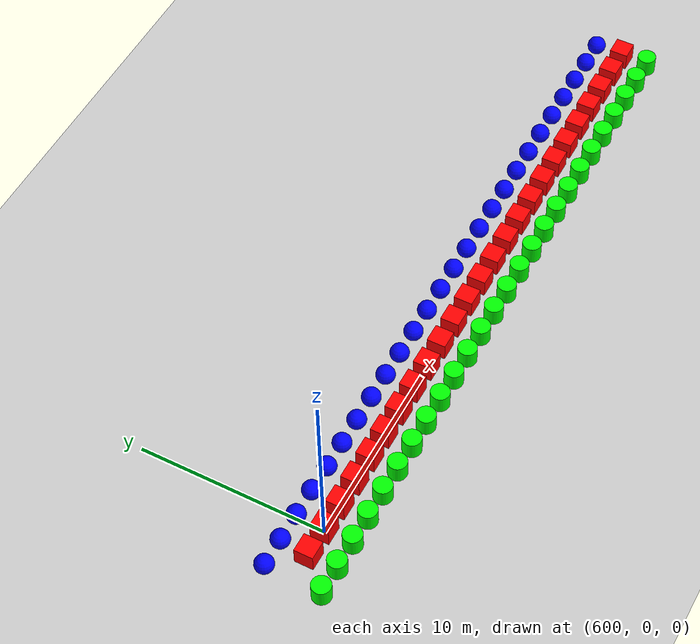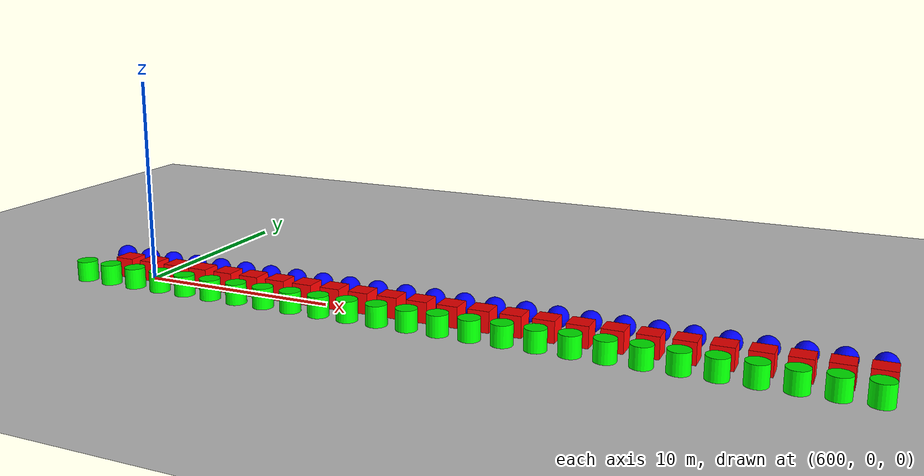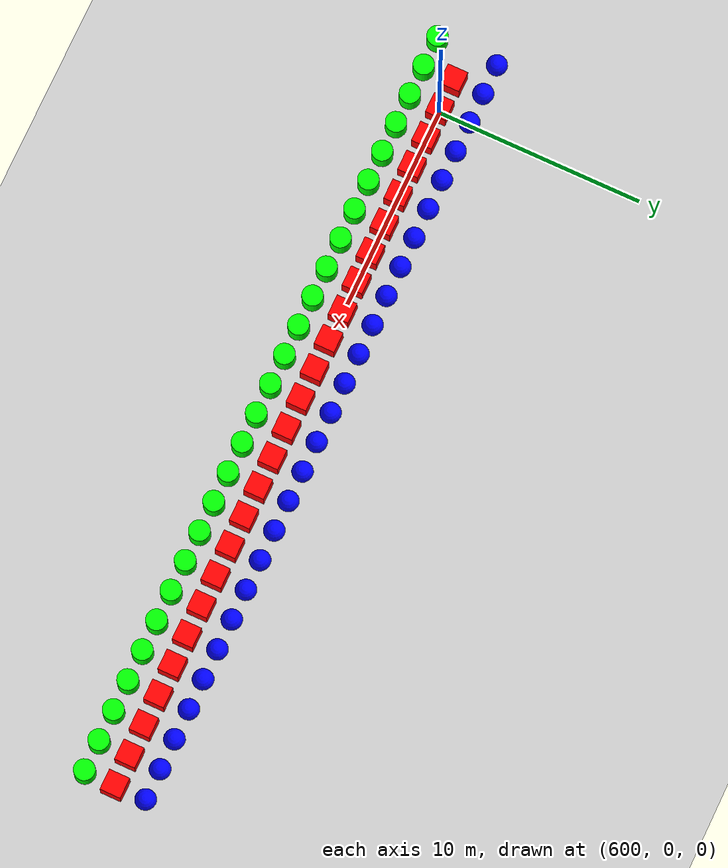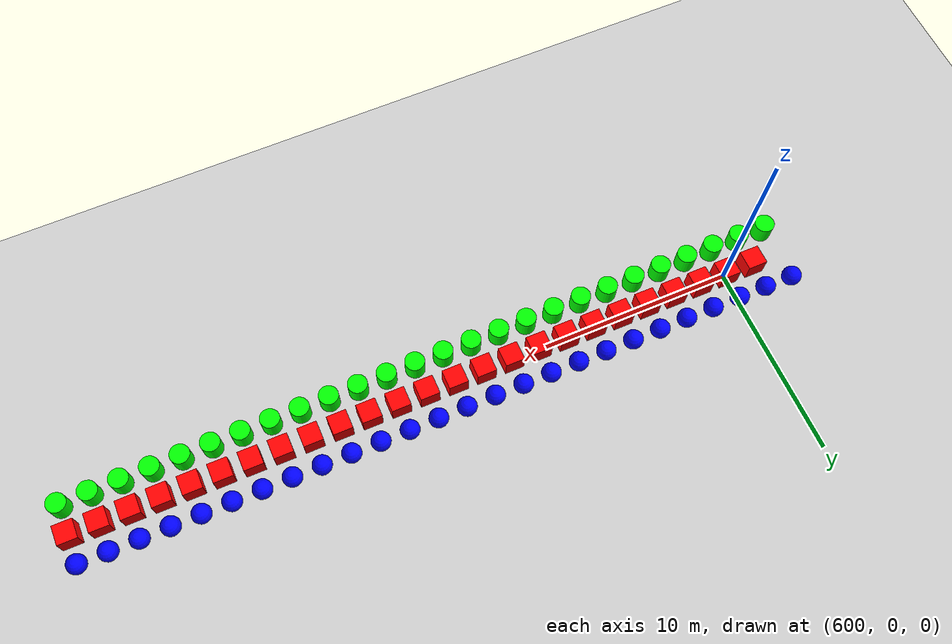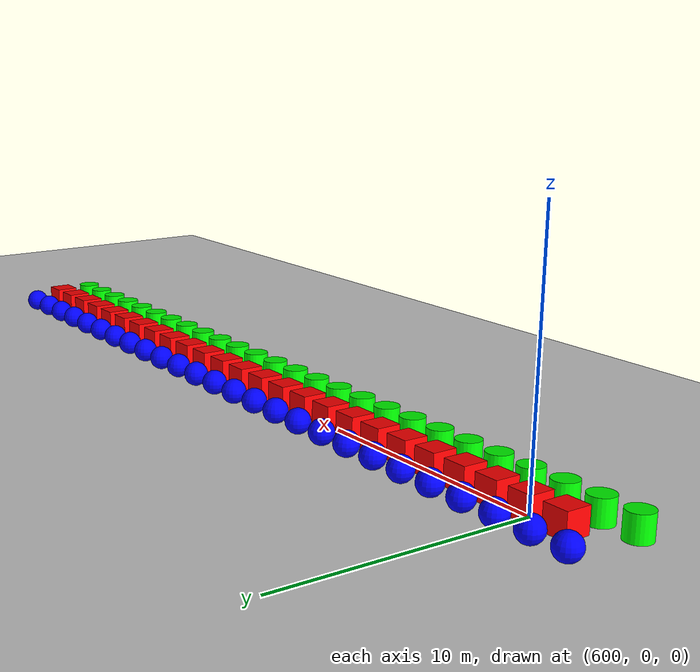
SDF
<sdf version="1.6">
 <world name="shapes">
  <model name="ground_plane">
   <static>true</static>
   <link name="link">
    <collision name="collision">
     <geometry><plane><normal>0 0 1</normal><size>100 100</size></plane></geometry>
    </collision>
    <visual name="visual">
     <geometry><plane><normal>0 0 1</normal><size>100 100</size></plane></geometry>
     <material>
      <ambient>0.8 0.8 0.8 1</ambient>
      <diffuse>0.8 0.8 0.8 1</diffuse>
      <specular>0.8 0.8 0.8 1</specular>
     </material>
    </visual>
   </link>
  </model>
  <model name="cylinder_898">
   <static>false</static>
   <pose>597.0 -1.5 0.5 0 0 0</pose>
   <link name="cylinder_link">
    <inertial>
     <inertia><ixx>2</ixx><ixy>0</ixy><ixz>0</ixz><iyy>2</iyy><iyz>0</iyz><izz>2</izz></inertia>
     <mass>2.0</mass>
    </inertial>
    <collision name="cylinder_collision">
     <geometry><cylinder><radius>0.5</radius><length>1.0</length></cylinder></geometry>
    </collision>
    <visual name="cylinder_visual">
     <geometry><cylinder><radius>0.5</radius><length>1.0</length></cylinder></geometry>
     <material><ambient>0 1 0 1</ambient><diffuse>0 1 0 1</diffuse><specular>0 1 0 1</specular></material>
    </visual>
   </link>
  </model>
  <model name="sphere_898">
   <static>false</static>
   <pose>597.0 1.5 0.5 0 0 0</pose>
   <link name="sphere_link">
    <inertial>
     <inertia><ixx>3</ixx><ixy>0</ixy><ixz>0</ixz><iyy>3</iyy><iyz>0</iyz><izz>3</izz></inertia>
     <mass>3.0</mass>
    </inertial>
    <collision name="sphere_collision"><geometry><sphere><radius>0.5</radius></sphere></geometry></collision>
    <visual name="sphere_visual">
     <geometry><sphere><radius>0.5</radius></sphere></geometry>
     <material><ambient>0 0 1 1</ambient><diffuse>0 0 1 1</diffuse><specular>0 0 1 1</specular></material>
    </visual>
   </link>
  </model>
  <model name="box_899">
   <static>false</static>
   <pose>598.5 0 0.5 0 0 0</pose>
   <link name="box_link">
    <inertial>
     <inertia><ixx>1</ixx><ixy>0</ixy><ixz>0</ixz><iyy>1</iyy><iyz>0</iyz><izz>1</izz></inertia>
     <mass>1.0</mass>
    </inertial>
    <collision name="box_collision"><geometry><box><size>1 1 1</size></box></geometry></collision>
    <visual name="box_visual">
     <geometry><box><size>1 1 1</size></box></geometry>
     <material><ambient>1 0 0 1</ambient><diffuse>1 0 0 1</diffuse><specular>1 0 0 1</specular></material>
    </visual>
   </link>
  </model>
  <model name="cylinder_899">
   <static>false</static>
   <pose>598.5 -1.5 0.5 0 0 0</pose>
   <link name="cylinder_link">
    <inertial>
     <inertia><ixx>2</ixx><ixy>0</ixy><ixz>0</ixz><iyy>2</iyy><iyz>0</iyz><izz>2</izz></inertia>
     <mass>2.0</mass>
    </inertial>
    <collision name="cylinder_collision">
     <geometry><cylinder><radius>0.5</radius><length>1.0</length></cylinder></geometry>
    </collision>
    <visual name="cylinder_visual">
     <geometry><cylinder><radius>0.5</radius><length>1.0</length></cylinder></geometry>
     <material><ambient>0 1 0 1</ambient><diffuse>0 1 0 1</diffuse><specular>0 1 0 1</specular></material>
    </visual>
   </link>
  </model>
  <model name="sphere_899">
   <static>false</static>
   <pose>598.5 1.5 0.5 0 0 0</pose>
   <link name="sphere_link">
    <inertial>
     <inertia><ixx>3</ixx><ixy>0</ixy><ixz>0</ixz><iyy>3</iyy><iyz>0</iyz><izz>3</izz></inertia>
     <mass>3.0</mass>
    </inertial>
    <collision name="sphere_collision"><geometry><sphere><radius>0.5</radius></sphere></geometry></collision>
    <visual name="sphere_visual">
     <geometry><sphere><radius>0.5</radius></sphere></geometry>
     <material><ambient>0 0 1 1</ambient><diffuse>0 0 1 1</diffuse><specular>0 0 1 1</specular></material>
    </visual>
   </link>
  </model>
  <model name="box_900">
   <static>false</static>
   <pose>600.0 0 0.5 0 0 0</pose>
   <link name="box_link">
    <inertial>
     <inertia><ixx>1</ixx><ixy>0</ixy><ixz>0</ixz><iyy>1</iyy><iyz>0</iyz><izz>1</izz></inertia>
     <mass>1.0</mass>
    </inertial>
    <collision name="box_collision"><geometry><box><size>1 1 1</size></box></geometry></collision>
    <visual name="box_visual">
     <geometry><box><size>1 1 1</size></box></geometry>
     <material><ambient>1 0 0 1</ambient><diffuse>1 0 0 1</diffuse><specular>1 0 0 1</specular></material>
    </visual>
   </link>
  </model>
  <model name="cylinder_900">
   <static>false</static>
   <pose>600.0 -1.5 0.5 0 0 0</pose>
   <link name="cylinder_link">
    <inertial>
     <inertia><ixx>2</ixx><ixy>0</ixy><ixz>0</ixz><iyy>2</iyy><iyz>0</iyz><izz>2</izz></inertia>
     <mass>2.0</mass>
    </inertial>
    <collision name="cylinder_collision">
     <geometry><cylinder><radius>0.5</radius><length>1.0</length></cylinder></geometry>
    </collision>
    <visual name="cylinder_visual">
     <geometry><cylinder><radius>0.5</radius><length>1.0</length></cylinder></geometry>
     <material><ambient>0 1 0 1</ambient><diffuse>0 1 0 1</diffuse><specular>0 1 0 1</specular></material>
    </visual>
   </link>
  </model>
  <model name="sphere_900">
   <static>false</static>
   <pose>600.0 1.5 0.5 0 0 0</pose>
   <link name="sphere_link">
    <inertial>
     <inertia><ixx>3</ixx><ixy>0</ixy><ixz>0</ixz><iyy>3</iyy><iyz>0</iyz><izz>3</izz></inertia>
     <mass>3.0</mass>
    </inertial>
    <collision name="sphere_collision"><geometry><sphere><radius>0.5</radius></sphere></geometry></collision>
    <visual name="sphere_visual">
     <geometry><sphere><radius>0.5</radius></sphere></geometry>
     <material><ambient>0 0 1 1</ambient><diffuse>0 0 1 1</diffuse><specular>0 0 1 1</specular></material>
    </visual>
   </link>
  </model>
  <model name="box_901">
   <static>false</static>
   <pose>601.5 0 0.5 0 0 0</pose>
   <link name="box_link">
    <inertial>
     <inertia><ixx>1</ixx><ixy>0</ixy><ixz>0</ixz><iyy>1</iyy><iyz>0</iyz><izz>1</izz></inertia>
     <mass>1.0</mass>
    </inertial>
    <collision name="box_collision"><geometry><box><size>1 1 1</size></box></geometry></collision>
    <visual name="box_visual">
     <geometry><box><size>1 1 1</size></box></geometry>
     <material><ambient>1 0 0 1</ambient><diffuse>1 0 0 1</diffuse><specular>1 0 0 1</specular></material>
    </visual>
   </link>
  </model>
  <model name="cylinder_901">
   <static>false</static>
   <pose>601.5 -1.5 0.5 0 0 0</pose>
   <link name="cylinder_link">
    <inertial>
     <inertia><ixx>2</ixx><ixy>0</ixy><ixz>0</ixz><iyy>2</iyy><iyz>0</iyz><izz>2</izz></inertia>
     <mass>2.0</mass>
    </inertial>
    <collision name="cylinder_collision">
     <geometry><cylinder><radius>0.5</radius><length>1.0</length></cylinder></geometry>
    </collision>
    <visual name="cylinder_visual">
     <geometry><cylinder><radius>0.5</radius><length>1.0</length></cylinder></geometry>
     <material><ambient>0 1 0 1</ambient><diffuse>0 1 0 1</diffuse><specular>0 1 0 1</specular></material>
    </visual>
   </link>
  </model>
  <model name="sphere_901">
   <static>false</static>
   <pose>601.5 1.5 0.5 0 0 0</pose>
   <link name="sphere_link">
    <inertial>
     <inertia><ixx>3</ixx><ixy>0</ixy><ixz>0</ixz><iyy>3</iyy><iyz>0</iyz><izz>3</izz></inertia>
     <mass>3.0</mass>
    </inertial>
    <collision name="sphere_collision"><geometry><sphere><radius>0.5</radius></sphere></geometry></collision>
    <visual name="sphere_visual">
     <geometry><sphere><radius>0.5</radius></sphere></geometry>
     <material><ambient>0 0 1 1</ambient><diffuse>0 0 1 1</diffuse><specular>0 0 1 1</specular></material>
    </visual>
   </link>
  </model>
  <model name="box_902">
   <static>false</static>
   <pose>603.0 0 0.5 0 0 0</pose>
   <link name="box_link">
    <inertial>
     <inertia><ixx>1</ixx><ixy>0</ixy><ixz>0</ixz><iyy>1</iyy><iyz>0</iyz><izz>1</izz></inertia>
     <mass>1.0</mass>
    </inertial>
    <collision name="box_collision"><geometry><box><size>1 1 1</size></box></geometry></collision>
    <visual name="box_visual">
     <geometry><box><size>1 1 1</size></box></geometry>
     <material><ambient>1 0 0 1</ambient><diffuse>1 0 0 1</diffuse><specular>1 0 0 1</specular></material>
    </visual>
   </link>
  </model>
  <model name="cylinder_902">
   <static>false</static>
   <pose>603.0 -1.5 0.5 0 0 0</pose>
   <link name="cylinder_link">
    <inertial>
     <inertia><ixx>2</ixx><ixy>0</ixy><ixz>0</ixz><iyy>2</iyy><iyz>0</iyz><izz>2</izz></inertia>
     <mass>2.0</mass>
    </inertial>
    <collision name="cylinder_collision">
     <geometry><cylinder><radius>0.5</radius><length>1.0</length></cylinder></geometry>
    </collision>
    <visual name="cylinder_visual">
     <geometry><cylinder><radius>0.5</radius><length>1.0</length></cylinder></geometry>
     <material><ambient>0 1 0 1</ambient><diffuse>0 1 0 1</diffuse><specular>0 1 0 1</specular></material>
    </visual>
   </link>
  </model>
  <model name="sphere_902">
   <static>false</static>
   <pose>603.0 1.5 0.5 0 0 0</pose>
   <link name="sphere_link">
    <inertial>
     <inertia><ixx>3</ixx><ixy>0</ixy><ixz>0</ixz><iyy>3</iyy><iyz>0</iyz><izz>3</izz></inertia>
     <mass>3.0</mass>
    </inertial>
    <collision name="sphere_collision"><geometry><sphere><radius>0.5</radius></sphere></geometry></collision>
    <visual name="sphere_visual">
     <geometry><sphere><radius>0.5</radius></sphere></geometry>
     <material><ambient>0 0 1 1</ambient><diffuse>0 0 1 1</diffuse><specular>0 0 1 1</specular></material>
    </visual>
   </link>
  </model>
  <model name="box_903">
   <static>false</static>
   <pose>604.5 0 0.5 0 0 0</pose>
   <link name="box_link">
    <inertial>
     <inertia><ixx>1</ixx><ixy>0</ixy><ixz>0</ixz><iyy>1</iyy><iyz>0</iyz><izz>1</izz></inertia>
     <mass>1.0</mass>
    </inertial>
    <collision name="box_collision"><geometry><box><size>1 1 1</size></box></geometry></collision>
    <visual name="box_visual">
     <geometry><box><size>1 1 1</size></box></geometry>
     <material><ambient>1 0 0 1</ambient><diffuse>1 0 0 1</diffuse><specular>1 0 0 1</specular></material>
    </visual>
   </link>
  </model>
  <model name="cylinder_903">
   <static>false</static>
   <pose>604.5 -1.5 0.5 0 0 0</pose>
   <link name="cylinder_link">
    <inertial>
     <inertia><ixx>2</ixx><ixy>0</ixy><ixz>0</ixz><iyy>2</iyy><iyz>0</iyz><izz>2</izz></inertia>
     <mass>2.0</mass>
    </inertial>
    <collision name="cylinder_collision">
     <geometry><cylinder><radius>0.5</radius><length>1.0</length></cylinder></geometry>
    </collision>
    <visual name="cylinder_visual">
     <geometry><cylinder><radius>0.5</radius><length>1.0</length></cylinder></geometry>
     <material><ambient>0 1 0 1</ambient><diffuse>0 1 0 1</diffuse><specular>0 1 0 1</specular></material>
    </visual>
   </link>
  </model>
  <model name="sphere_903">
   <static>false</static>
   <pose>604.5 1.5 0.5 0 0 0</pose>
   <link name="sphere_link">
    <inertial>
     <inertia><ixx>3</ixx><ixy>0</ixy><ixz>0</ixz><iyy>3</iyy><iyz>0</iyz><izz>3</izz></inertia>
     <mass>3.0</mass>
    </inertial>
    <collision name="sphere_collision"><geometry><sphere><radius>0.5</radius></sphere></geometry></collision>
    <visual name="sphere_visual">
     <geometry><sphere><radius>0.5</radius></sphere></geometry>
     <material><ambient>0 0 1 1</ambient><diffuse>0 0 1 1</diffuse><specular>0 0 1 1</specular></material>
    </visual>
   </link>
  </model>
  <model name="box_904">
   <static>false</static>
   <pose>606.0 0 0.5 0 0 0</pose>
   <link name="box_link">
    <inertial>
     <inertia><ixx>1</ixx><ixy>0</ixy><ixz>0</ixz><iyy>1</iyy><iyz>0</iyz><izz>1</izz></inertia>
     <mass>1.0</mass>
    </inertial>
    <collision name="box_collision"><geometry><box><size>1 1 1</size></box></geometry></collision>
    <visual name="box_visual">
     <geometry><box><size>1 1 1</size></box></geometry>
     <material><ambient>1 0 0 1</ambient><diffuse>1 0 0 1</diffuse><specular>1 0 0 1</specular></material>
    </visual>
   </link>
  </model>
  <model name="cylinder_904">
   <static>false</static>
   <pose>606.0 -1.5 0.5 0 0 0</pose>
   <link name="cylinder_link">
    <inertial>
     <inertia><ixx>2</ixx><ixy>0</ixy><ixz>0</ixz><iyy>2</iyy><iyz>0</iyz><izz>2</izz></inertia>
     <mass>2.0</mass>
    </inertial>
    <collision name="cylinder_collision">
     <geometry><cylinder><radius>0.5</radius><length>1.0</length></cylinder></geometry>
    </collision>
    <visual name="cylinder_visual">
     <geometry><cylinder><radius>0.5</radius><length>1.0</length></cylinder></geometry>
     <material><ambient>0 1 0 1</ambient><diffuse>0 1 0 1</diffuse><specular>0 1 0 1</specular></material>
    </visual>
   </link>
  </model>
  <model name="sphere_904">
   <static>false</static>
   <pose>606.0 1.5 0.5 0 0 0</pose>
   <link name="sphere_link">
    <inertial>
     <inertia><ixx>3</ixx><ixy>0</ixy><ixz>0</ixz><iyy>3</iyy><iyz>0</iyz><izz>3</izz></inertia>
     <mass>3.0</mass>
    </inertial>
    <collision name="sphere_collision"><geometry><sphere><radius>0.5</radius></sphere></geometry></collision>
    <visual name="sphere_visual">
     <geometry><sphere><radius>0.5</radius></sphere></geometry>
     <material><ambient>0 0 1 1</ambient><diffuse>0 0 1 1</diffuse><specular>0 0 1 1</specular></material>
    </visual>
   </link>
  </model>
  <model name="box_905">
   <static>false</static>
   <pose>607.5 0 0.5 0 0 0</pose>
   <link name="box_link">
    <inertial>
     <inertia><ixx>1</ixx><ixy>0</ixy><ixz>0</ixz><iyy>1</iyy><iyz>0</iyz><izz>1</izz></inertia>
     <mass>1.0</mass>
    </inertial>
    <collision name="box_collision"><geometry><box><size>1 1 1</size></box></geometry></collision>
    <visual name="box_visual">
     <geometry><box><size>1 1 1</size></box></geometry>
     <material><ambient>1 0 0 1</ambient><diffuse>1 0 0 1</diffuse><specular>1 0 0 1</specular></material>
    </visual>
   </link>
  </model>
  <model name="cylinder_905">
   <static>false</static>
   <pose>607.5 -1.5 0.5 0 0 0</pose>
   <link name="cylinder_link">
    <inertial>
     <inertia><ixx>2</ixx><ixy>0</ixy><ixz>0</ixz><iyy>2</iyy><iyz>0</iyz><izz>2</izz></inertia>
     <mass>2.0</mass>
    </inertial>
    <collision name="cylinder_collision">
     <geometry><cylinder><radius>0.5</radius><length>1.0</length></cylinder></geometry>
    </collision>
    <visual name="cylinder_visual">
     <geometry><cylinder><radius>0.5</radius><length>1.0</length></cylinder></geometry>
     <material><ambient>0 1 0 1</ambient><diffuse>0 1 0 1</diffuse><specular>0 1 0 1</specular></material>
    </visual>
   </link>
  </model>
  <model name="sphere_905">
   <static>false</static>
   <pose>607.5 1.5 0.5 0 0 0</pose>
   <link name="sphere_link">
    <inertial>
     <inertia><ixx>3</ixx><ixy>0</ixy><ixz>0</ixz><iyy>3</iyy><iyz>0</iyz><izz>3</izz></inertia>
     <mass>3.0</mass>
    </inertial>
    <collision name="sphere_collision"><geometry><sphere><radius>0.5</radius></sphere></geometry></collision>
    <visual name="sphere_visual">
     <geometry><sphere><radius>0.5</radius></sphere></geometry>
     <material><ambient>0 0 1 1</ambient><diffuse>0 0 1 1</diffuse><specular>0 0 1 1</specular></material>
    </visual>
   </link>
  </model>
  <model name="box_906">
   <static>false</static>
   <pose>609.0 0 0.5 0 0 0</pose>
   <link name="box_link">
    <inertial>
     <inertia><ixx>1</ixx><ixy>0</ixy><ixz>0</ixz><iyy>1</iyy><iyz>0</iyz><izz>1</izz></inertia>
     <mass>1.0</mass>
    </inertial>
    <collision name="box_collision"><geometry><box><size>1 1 1</size></box></geometry></collision>
    <visual name="box_visual">
     <geometry><box><size>1 1 1</size></box></geometry>
     <material><ambient>1 0 0 1</ambient><diffuse>1 0 0 1</diffuse><specular>1 0 0 1</specular></material>
    </visual>
   </link>
  </model>
  <model name="cylinder_906">
   <static>false</static>
   <pose>609.0 -1.5 0.5 0 0 0</pose>
   <link name="cylinder_link">
    <inertial>
     <inertia><ixx>2</ixx><ixy>0</ixy><ixz>0</ixz><iyy>2</iyy><iyz>0</iyz><izz>2</izz></inertia>
     <mass>2.0</mass>
    </inertial>
    <collision name="cylinder_collision">
     <geometry><cylinder><radius>0.5</radius><length>1.0</length></cylinder></geometry>
    </collision>
    <visual name="cylinder_visual">
     <geometry><cylinder><radius>0.5</radius><length>1.0</length></cylinder></geometry>
     <material><ambient>0 1 0 1</ambient><diffuse>0 1 0 1</diffuse><specular>0 1 0 1</specular></material>
    </visual>
   </link>
  </model>
  <model name="sphere_906">
   <static>false</static>
   <pose>609.0 1.5 0.5 0 0 0</pose>
   <link name="sphere_link">
    <inertial>
     <inertia><ixx>3</ixx><ixy>0</ixy><ixz>0</ixz><iyy>3</iyy><iyz>0</iyz><izz>3</izz></inertia>
     <mass>3.0</mass>
    </inertial>
    <collision name="sphere_collision"><geometry><sphere><radius>0.5</radius></sphere></geometry></collision>
    <visual name="sphere_visual">
     <geometry><sphere><radius>0.5</radius></sphere></geometry>
     <material><ambient>0 0 1 1</ambient><diffuse>0 0 1 1</diffuse><specular>0 0 1 1</specular></material>
    </visual>
   </link>
  </model>
  <model name="box_907">
   <static>false</static>
   <pose>610.5 0 0.5 0 0 0</pose>
   <link name="box_link">
    <inertial>
     <inertia><ixx>1</ixx><ixy>0</ixy><ixz>0</ixz><iyy>1</iyy><iyz>0</iyz><izz>1</izz></inertia>
     <mass>1.0</mass>
    </inertial>
    <collision name="box_collision"><geometry><box><size>1 1 1</size></box></geometry></collision>
    <visual name="box_visual">
     <geometry><box><size>1 1 1</size></box></geometry>
     <material><ambient>1 0 0 1</ambient><diffuse>1 0 0 1</diffuse><specular>1 0 0 1</specular></material>
    </visual>
   </link>
  </model>
  <model name="cylinder_907">
   <static>false</static>
   <pose>610.5 -1.5 0.5 0 0 0</pose>
   <link name="cylinder_link">
    <inertial>
     <inertia><ixx>2</ixx><ixy>0</ixy><ixz>0</ixz><iyy>2</iyy><iyz>0</iyz><izz>2</izz></inertia>
     <mass>2.0</mass>
    </inertial>
    <collision name="cylinder_collision">
     <geometry><cylinder><radius>0.5</radius><length>1.0</length></cylinder></geometry>
    </collision>
    <visual name="cylinder_visual">
     <geometry><cylinder><radius>0.5</radius><length>1.0</length></cylinder></geometry>
     <material><ambient>0 1 0 1</ambient><diffuse>0 1 0 1</diffuse><specular>0 1 0 1</specular></material>
    </visual>
   </link>
  </model>
  <model name="sphere_907">
   <static>false</static>
   <pose>610.5 1.5 0.5 0 0 0</pose>
   <link name="sphere_link">
    <inertial>
     <inertia><ixx>3</ixx><ixy>0</ixy><ixz>0</ixz><iyy>3</iyy><iyz>0</iyz><izz>3</izz></inertia>
     <mass>3.0</mass>
    </inertial>
    <collision name="sphere_collision"><geometry><sphere><radius>0.5</radius></sphere></geometry></collision>
    <visual name="sphere_visual">
     <geometry><sphere><radius>0.5</radius></sphere></geometry>
     <material><ambient>0 0 1 1</ambient><diffuse>0 0 1 1</diffuse><specular>0 0 1 1</specular></material>
    </visual>
   </link>
  </model>
  <model name="box_908">
   <static>false</static>
   <pose>612.0 0 0.5 0 0 0</pose>
   <link name="box_link">
    <inertial>
     <inertia><ixx>1</ixx><ixy>0</ixy><ixz>0</ixz><iyy>1</iyy><iyz>0</iyz><izz>1</izz></inertia>
     <mass>1.0</mass>
    </inertial>
    <collision name="box_collision"><geometry><box><size>1 1 1</size></box></geometry></collision>
    <visual name="box_visual">
     <geometry><box><size>1 1 1</size></box></geometry>
     <material><ambient>1 0 0 1</ambient><diffuse>1 0 0 1</diffuse><specular>1 0 0 1</specular></material>
    </visual>
   </link>
  </model>
  <model name="cylinder_908">
   <static>false</static>
   <pose>612.0 -1.5 0.5 0 0 0</pose>
   <link name="cylinder_link">
    <inertial>
     <inertia><ixx>2</ixx><ixy>0</ixy><ixz>0</ixz><iyy>2</iyy><iyz>0</iyz><izz>2</izz></inertia>
     <mass>2.0</mass>
    </inertial>
    <collision name="cylinder_collision">
     <geometry><cylinder><radius>0.5</radius><length>1.0</length></cylinder></geometry>
    </collision>
    <visual name="cylinder_visual">
     <geometry><cylinder><radius>0.5</radius><length>1.0</length></cylinder></geometry>
     <material><ambient>0 1 0 1</ambient><diffuse>0 1 0 1</diffuse><specular>0 1 0 1</specular></material>
    </visual>
   </link>
  </model>
  <model name="sphere_908">
   <static>false</static>
   <pose>612.0 1.5 0.5 0 0 0</pose>
   <link name="sphere_link">
    <inertial>
     <inertia><ixx>3</ixx><ixy>0</ixy><ixz>0</ixz><iyy>3</iyy><iyz>0</iyz><izz>3</izz></inertia>
     <mass>3.0</mass>
    </inertial>
    <collision name="sphere_collision"><geometry><sphere><radius>0.5</radius></sphere></geometry></collision>
    <visual name="sphere_visual">
     <geometry><sphere><radius>0.5</radius></sphere></geometry>
     <material><ambient>0 0 1 1</ambient><diffuse>0 0 1 1</diffuse><specular>0 0 1 1</specular></material>
    </visual>
   </link>
  </model>
  <model name="box_909">
   <static>false</static>
   <pose>613.5 0 0.5 0 0 0</pose>
   <link name="box_link">
    <inertial>
     <inertia><ixx>1</ixx><ixy>0</ixy><ixz>0</ixz><iyy>1</iyy><iyz>0</iyz><izz>1</izz></inertia>
     <mass>1.0</mass>
    </inertial>
    <collision name="box_collision"><geometry><box><size>1 1 1</size></box></geometry></collision>
    <visual name="box_visual">
     <geometry><box><size>1 1 1</size></box></geometry>
     <material><ambient>1 0 0 1</ambient><diffuse>1 0 0 1</diffuse><specular>1 0 0 1</specular></material>
    </visual>
   </link>
  </model>
  <model name="cylinder_909">
   <static>false</static>
   <pose>613.5 -1.5 0.5 0 0 0</pose>
   <link name="cylinder_link">
    <inertial>
     <inertia><ixx>2</ixx><ixy>0</ixy><ixz>0</ixz><iyy>2</iyy><iyz>0</iyz><izz>2</izz></inertia>
     <mass>2.0</mass>
    </inertial>
    <collision name="cylinder_collision">
     <geometry><cylinder><radius>0.5</radius><length>1.0</length></cylinder></geometry>
    </collision>
    <visual name="cylinder_visual">
     <geometry><cylinder><radius>0.5</radius><length>1.0</length></cylinder></geometry>
     <material><ambient>0 1 0 1</ambient><diffuse>0 1 0 1</diffuse><specular>0 1 0 1</specular></material>
    </visual>
   </link>
  </model>
  <model name="sphere_909">
   <static>false</static>
   <pose>613.5 1.5 0.5 0 0 0</pose>
   <link name="sphere_link">
    <inertial>
     <inertia><ixx>3</ixx><ixy>0</ixy><ixz>0</ixz><iyy>3</iyy><iyz>0</iyz><izz>3</izz></inertia>
     <mass>3.0</mass>
    </inertial>
    <collision name="sphere_collision"><geometry><sphere><radius>0.5</radius></sphere></geometry></collision>
    <visual name="sphere_visual">
     <geometry><sphere><radius>0.5</radius></sphere></geometry>
     <material><ambient>0 0 1 1</ambient><diffuse>0 0 1 1</diffuse><specular>0 0 1 1</specular></material>
    </visual>
   </link>
  </model>
  <model name="box_910">
   <static>false</static>
   <pose>615.0 0 0.5 0 0 0</pose>
   <link name="box_link">
    <inertial>
     <inertia><ixx>1</ixx><ixy>0</ixy><ixz>0</ixz><iyy>1</iyy><iyz>0</iyz><izz>1</izz></inertia>
     <mass>1.0</mass>
    </inertial>
    <collision name="box_collision"><geometry><box><size>1 1 1</size></box></geometry></collision>
    <visual name="box_visual">
     <geometry><box><size>1 1 1</size></box></geometry>
     <material><ambient>1 0 0 1</ambient><diffuse>1 0 0 1</diffuse><specular>1 0 0 1</specular></material>
    </visual>
   </link>
  </model>
  <model name="cylinder_910">
   <static>false</static>
   <pose>615.0 -1.5 0.5 0 0 0</pose>
   <link name="cylinder_link">
    <inertial>
     <inertia><ixx>2</ixx><ixy>0</ixy><ixz>0</ixz><iyy>2</iyy><iyz>0</iyz><izz>2</izz></inertia>
     <mass>2.0</mass>
    </inertial>
    <collision name="cylinder_collision">
     <geometry><cylinder><radius>0.5</radius><length>1.0</length></cylinder></geometry>
    </collision>
    <visual name="cylinder_visual">
     <geometry><cylinder><radius>0.5</radius><length>1.0</length></cylinder></geometry>
     <material><ambient>0 1 0 1</ambient><diffuse>0 1 0 1</diffuse><specular>0 1 0 1</specular></material>
    </visual>
   </link>
  </model>
  <model name="sphere_910">
   <static>false</static>
   <pose>615.0 1.5 0.5 0 0 0</pose>
   <link name="sphere_link">
    <inertial>
     <inertia><ixx>3</ixx><ixy>0</ixy><ixz>0</ixz><iyy>3</iyy><iyz>0</iyz><izz>3</izz></inertia>
     <mass>3.0</mass>
    </inertial>
    <collision name="sphere_collision"><geometry><sphere><radius>0.5</radius></sphere></geometry></collision>
    <visual name="sphere_visual">
     <geometry><sphere><radius>0.5</radius></sphere></geometry>
     <material><ambient>0 0 1 1</ambient><diffuse>0 0 1 1</diffuse><specular>0 0 1 1</specular></material>
    </visual>
   </link>
  </model>
  <model name="box_911">
   <static>false</static>
   <pose>616.5 0 0.5 0 0 0</pose>
   <link name="box_link">
    <inertial>
     <inertia><ixx>1</ixx><ixy>0</ixy><ixz>0</ixz><iyy>1</iyy><iyz>0</iyz><izz>1</izz></inertia>
     <mass>1.0</mass>
    </inertial>
    <collision name="box_collision"><geometry><box><size>1 1 1</size></box></geometry></collision>
    <visual name="box_visual">
     <geometry><box><size>1 1 1</size></box></geometry>
     <material><ambient>1 0 0 1</ambient><diffuse>1 0 0 1</diffuse><specular>1 0 0 1</specular></material>
    </visual>
   </link>
  </model>
  <model name="cylinder_911">
   <static>false</static>
   <pose>616.5 -1.5 0.5 0 0 0</pose>
   <link name="cylinder_link">
    <inertial>
     <inertia><ixx>2</ixx><ixy>0</ixy><ixz>0</ixz><iyy>2</iyy><iyz>0</iyz><izz>2</izz></inertia>
     <mass>2.0</mass>
    </inertial>
    <collision name="cylinder_collision">
     <geometry><cylinder><radius>0.5</radius><length>1.0</length></cylinder></geometry>
    </collision>
    <visual name="cylinder_visual">
     <geometry><cylinder><radius>0.5</radius><length>1.0</length></cylinder></geometry>
     <material><ambient>0 1 0 1</ambient><diffuse>0 1 0 1</diffuse><specular>0 1 0 1</specular></material>
    </visual>
   </link>
  </model>
  <model name="sphere_911">
   <static>false</static>
   <pose>616.5 1.5 0.5 0 0 0</pose>
   <link name="sphere_link">
    <inertial>
     <inertia><ixx>3</ixx><ixy>0</ixy><ixz>0</ixz><iyy>3</iyy><iyz>0</iyz><izz>3</izz></inertia>
     <mass>3.0</mass>
    </inertial>
    <collision name="sphere_collision"><geometry><sphere><radius>0.5</radius></sphere></geometry></collision>
    <visual name="sphere_visual">
     <geometry><sphere><radius>0.5</radius></sphere></geometry>
     <material><ambient>0 0 1 1</ambient><diffuse>0 0 1 1</diffuse><specular>0 0 1 1</specular></material>
    </visual>
   </link>
  </model>
  <model name="box_912">
   <static>false</static>
   <pose>618.0 0 0.5 0 0 0</pose>
   <link name="box_link">
    <inertial>
     <inertia><ixx>1</ixx><ixy>0</ixy><ixz>0</ixz><iyy>1</iyy><iyz>0</iyz><izz>1</izz></inertia>
     <mass>1.0</mass>
    </inertial>
    <collision name="box_collision"><geometry><box><size>1 1 1</size></box></geometry></collision>
    <visual name="box_visual">
     <geometry><box><size>1 1 1</size></box></geometry>
     <material><ambient>1 0 0 1</ambient><diffuse>1 0 0 1</diffuse><specular>1 0 0 1</specular></material>
    </visual>
   </link>
  </model>
  <model name="cylinder_912">
   <static>false</static>
   <pose>618.0 -1.5 0.5 0 0 0</pose>
   <link name="cylinder_link">
    <inertial>
     <inertia><ixx>2</ixx><ixy>0</ixy><ixz>0</ixz><iyy>2</iyy><iyz>0</iyz><izz>2</izz></inertia>
     <mass>2.0</mass>
    </inertial>
    <collision name="cylinder_collision">
     <geometry><cylinder><radius>0.5</radius><length>1.0</length></cylinder></geometry>
    </collision>
    <visual name="cylinder_visual">
     <geometry><cylinder><radius>0.5</radius><length>1.0</length></cylinder></geometry>
     <material><ambient>0 1 0 1</ambient><diffuse>0 1 0 1</diffuse><specular>0 1 0 1</specular></material>
    </visual>
   </link>
  </model>
  <model name="sphere_912">
   <static>false</static>
   <pose>618.0 1.5 0.5 0 0 0</pose>
   <link name="sphere_link">
    <inertial>
     <inertia><ixx>3</ixx><ixy>0</ixy><ixz>0</ixz><iyy>3</iyy><iyz>0</iyz><izz>3</izz></inertia>
     <mass>3.0</mass>
    </inertial>
    <collision name="sphere_collision"><geometry><sphere><radius>0.5</radius></sphere></geometry></collision>
    <visual name="sphere_visual">
     <geometry><sphere><radius>0.5</radius></sphere></geometry>
     <material><ambient>0 0 1 1</ambient><diffuse>0 0 1 1</diffuse><specular>0 0 1 1</specular></material>
    </visual>
   </link>
  </model>
  <model name="box_913">
   <static>false</static>
   <pose>619.5 0 0.5 0 0 0</pose>
   <link name="box_link">
    <inertial>
     <inertia><ixx>1</ixx><ixy>0</ixy><ixz>0</ixz><iyy>1</iyy><iyz>0</iyz><izz>1</izz></inertia>
     <mass>1.0</mass>
    </inertial>
    <collision name="box_collision"><geometry><box><size>1 1 1</size></box></geometry></collision>
    <visual name="box_visual">
     <geometry><box><size>1 1 1</size></box></geometry>
     <material><ambient>1 0 0 1</ambient><diffuse>1 0 0 1</diffuse><specular>1 0 0 1</specular></material>
    </visual>
   </link>
  </model>
  <model name="cylinder_913">
   <static>false</static>
   <pose>619.5 -1.5 0.5 0 0 0</pose>
   <link name="cylinder_link">
    <inertial>
     <inertia><ixx>2</ixx><ixy>0</ixy><ixz>0</ixz><iyy>2</iyy><iyz>0</iyz><izz>2</izz></inertia>
     <mass>2.0</mass>
    </inertial>
    <collision name="cylinder_collision">
     <geometry><cylinder><radius>0.5</radius><length>1.0</length></cylinder></geometry>
    </collision>
    <visual name="cylinder_visual">
     <geometry><cylinder><radius>0.5</radius><length>1.0</length></cylinder></geometry>
     <material><ambient>0 1 0 1</ambient><diffuse>0 1 0 1</diffuse><specular>0 1 0 1</specular></material>
    </visual>
   </link>
  </model>
  <model name="sphere_913">
   <static>false</static>
   <pose>619.5 1.5 0.5 0 0 0</pose>
   <link name="sphere_link">
    <inertial>
     <inertia><ixx>3</ixx><ixy>0</ixy><ixz>0</ixz><iyy>3</iyy><iyz>0</iyz><izz>3</izz></inertia>
     <mass>3.0</mass>
    </inertial>
    <collision name="sphere_collision"><geometry><sphere><radius>0.5</radius></sphere></geometry></collision>
    <visual name="sphere_visual">
     <geometry><sphere><radius>0.5</radius></sphere></geometry>
     <material><ambient>0 0 1 1</ambient><diffuse>0 0 1 1</diffuse><specular>0 0 1 1</specular></material>
    </visual>
   </link>
  </model>
  <model name="box_914">
   <static>false</static>
   <pose>621.0 0 0.5 0 0 0</pose>
   <link name="box_link">
    <inertial>
     <inertia><ixx>1</ixx><ixy>0</ixy><ixz>0</ixz><iyy>1</iyy><iyz>0</iyz><izz>1</izz></inertia>
     <mass>1.0</mass>
    </inertial>
    <collision name="box_collision"><geometry><box><size>1 1 1</size></box></geometry></collision>
    <visual name="box_visual">
     <geometry><box><size>1 1 1</size></box></geometry>
     <material><ambient>1 0 0 1</ambient><diffuse>1 0 0 1</diffuse><specular>1 0 0 1</specular></material>
    </visual>
   </link>
  </model>
  <model name="cylinder_914">
   <static>false</static>
   <pose>621.0 -1.5 0.5 0 0 0</pose>
   <link name="cylinder_link">
    <inertial>
     <inertia><ixx>2</ixx><ixy>0</ixy><ixz>0</ixz><iyy>2</iyy><iyz>0</iyz><izz>2</izz></inertia>
     <mass>2.0</mass>
    </inertial>
    <collision name="cylinder_collision">
     <geometry><cylinder><radius>0.5</radius><length>1.0</length></cylinder></geometry>
    </collision>
    <visual name="cylinder_visual">
     <geometry><cylinder><radius>0.5</radius><length>1.0</length></cylinder></geometry>
     <material><ambient>0 1 0 1</ambient><diffuse>0 1 0 1</diffuse><specular>0 1 0 1</specular></material>
    </visual>
   </link>
  </model>
  <model name="sphere_914">
   <static>false</static>
   <pose>621.0 1.5 0.5 0 0 0</pose>
   <link name="sphere_link">
    <inertial>
     <inertia><ixx>3</ixx><ixy>0</ixy><ixz>0</ixz><iyy>3</iyy><iyz>0</iyz><izz>3</izz></inertia>
     <mass>3.0</mass>
    </inertial>
    <collision name="sphere_collision"><geometry><sphere><radius>0.5</radius></sphere></geometry></collision>
    <visual name="sphere_visual">
     <geometry><sphere><radius>0.5</radius></sphere></geometry>
     <material><ambient>0 0 1 1</ambient><diffuse>0 0 1 1</diffuse><specular>0 0 1 1</specular></material>
    </visual>
   </link>
  </model>
  <model name="box_915">
   <static>false</static>
   <pose>622.5 0 0.5 0 0 0</pose>
   <link name="box_link">
    <inertial>
     <inertia><ixx>1</ixx><ixy>0</ixy><ixz>0</ixz><iyy>1</iyy><iyz>0</iyz><izz>1</izz></inertia>
     <mass>1.0</mass>
    </inertial>
    <collision name="box_collision"><geometry><box><size>1 1 1</size></box></geometry></collision>
    <visual name="box_visual">
     <geometry><box><size>1 1 1</size></box></geometry>
     <material><ambient>1 0 0 1</ambient><diffuse>1 0 0 1</diffuse><specular>1 0 0 1</specular></material>
    </visual>
   </link>
  </model>
  <model name="cylinder_915">
   <static>false</static>
   <pose>622.5 -1.5 0.5 0 0 0</pose>
   <link name="cylinder_link">
    <inertial>
     <inertia><ixx>2</ixx><ixy>0</ixy><ixz>0</ixz><iyy>2</iyy><iyz>0</iyz><izz>2</izz></inertia>
     <mass>2.0</mass>
    </inertial>
    <collision name="cylinder_collision">
     <geometry><cylinder><radius>0.5</radius><length>1.0</length></cylinder></geometry>
    </collision>
    <visual name="cylinder_visual">
     <geometry><cylinder><radius>0.5</radius><length>1.0</length></cylinder></geometry>
     <material><ambient>0 1 0 1</ambient><diffuse>0 1 0 1</diffuse><specular>0 1 0 1</specular></material>
    </visual>
   </link>
  </model>
  <model name="sphere_915">
   <static>false</static>
   <pose>622.5 1.5 0.5 0 0 0</pose>
   <link name="sphere_link">
    <inertial>
     <inertia><ixx>3</ixx><ixy>0</ixy><ixz>0</ixz><iyy>3</iyy><iyz>0</iyz><izz>3</izz></inertia>
     <mass>3.0</mass>
    </inertial>
    <collision name="sphere_collision"><geometry><sphere><radius>0.5</radius></sphere></geometry></collision>
    <visual name="sphere_visual">
     <geometry><sphere><radius>0.5</radius></sphere></geometry>
     <material><ambient>0 0 1 1</ambient><diffuse>0 0 1 1</diffuse><specular>0 0 1 1</specular></material>
    </visual>
   </link>
  </model>
  <model name="box_916">
   <static>false</static>
   <pose>624.0 0 0.5 0 0 0</pose>
   <link name="box_link">
    <inertial>
     <inertia><ixx>1</ixx><ixy>0</ixy><ixz>0</ixz><iyy>1</iyy><iyz>0</iyz><izz>1</izz></inertia>
     <mass>1.0</mass>
    </inertial>
    <collision name="box_collision"><geometry><box><size>1 1 1</size></box></geometry></collision>
    <visual name="box_visual">
     <geometry><box><size>1 1 1</size></box></geometry>
     <material><ambient>1 0 0 1</ambient><diffuse>1 0 0 1</diffuse><specular>1 0 0 1</specular></material>
    </visual>
   </link>
  </model>
  <model name="cylinder_916">
   <static>false</static>
   <pose>624.0 -1.5 0.5 0 0 0</pose>
   <link name="cylinder_link">
    <inertial>
     <inertia><ixx>2</ixx><ixy>0</ixy><ixz>0</ixz><iyy>2</iyy><iyz>0</iyz><izz>2</izz></inertia>
     <mass>2.0</mass>
    </inertial>
    <collision name="cylinder_collision">
     <geometry><cylinder><radius>0.5</radius><length>1.0</length></cylinder></geometry>
    </collision>
    <visual name="cylinder_visual">
     <geometry><cylinder><radius>0.5</radius><length>1.0</length></cylinder></geometry>
     <material><ambient>0 1 0 1</ambient><diffuse>0 1 0 1</diffuse><specular>0 1 0 1</specular></material>
    </visual>
   </link>
  </model>
  <model name="sphere_916">
   <static>false</static>
   <pose>624.0 1.5 0.5 0 0 0</pose>
   <link name="sphere_link">
    <inertial>
     <inertia><ixx>3</ixx><ixy>0</ixy><ixz>0</ixz><iyy>3</iyy><iyz>0</iyz><izz>3</izz></inertia>
     <mass>3.0</mass>
    </inertial>
    <collision name="sphere_collision"><geometry><sphere><radius>0.5</radius></sphere></geometry></collision>
    <visual name="sphere_visual">
     <geometry><sphere><radius>0.5</radius></sphere></geometry>
     <material><ambient>0 0 1 1</ambient><diffuse>0 0 1 1</diffuse><specular>0 0 1 1</specular></material>
    </visual>
   </link>
  </model>
  <model name="box_917">
   <static>false</static>
   <pose>625.5 0 0.5 0 0 0</pose>
   <link name="box_link">
    <inertial>
     <inertia><ixx>1</ixx><ixy>0</ixy><ixz>0</ixz><iyy>1</iyy><iyz>0</iyz><izz>1</izz></inertia>
     <mass>1.0</mass>
    </inertial>
    <collision name="box_collision"><geometry><box><size>1 1 1</size></box></geometry></collision>
    <visual name="box_visual">
     <geometry><box><size>1 1 1</size></box></geometry>
     <material><ambient>1 0 0 1</ambient><diffuse>1 0 0 1</diffuse><specular>1 0 0 1</specular></material>
    </visual>
   </link>
  </model>
  <model name="cylinder_917">
   <static>false</static>
   <pose>625.5 -1.5 0.5 0 0 0</pose>
   <link name="cylinder_link">
    <inertial>
     <inertia><ixx>2</ixx><ixy>0</ixy><ixz>0</ixz><iyy>2</iyy><iyz>0</iyz><izz>2</izz></inertia>
     <mass>2.0</mass>
    </inertial>
    <collision name="cylinder_collision">
     <geometry><cylinder><radius>0.5</radius><length>1.0</length></cylinder></geometry>
    </collision>
    <visual name="cylinder_visual">
     <geometry><cylinder><radius>0.5</radius><length>1.0</length></cylinder></geometry>
     <material><ambient>0 1 0 1</ambient><diffuse>0 1 0 1</diffuse><specular>0 1 0 1</specular></material>
    </visual>
   </link>
  </model>
  <model name="sphere_917">
   <static>false</static>
   <pose>625.5 1.5 0.5 0 0 0</pose>
   <link name="sphere_link">
    <inertial>
     <inertia><ixx>3</ixx><ixy>0</ixy><ixz>0</ixz><iyy>3</iyy><iyz>0</iyz><izz>3</izz></inertia>
     <mass>3.0</mass>
    </inertial>
    <collision name="sphere_collision"><geometry><sphere><radius>0.5</radius></sphere></geometry></collision>
    <visual name="sphere_visual">
     <geometry><sphere><radius>0.5</radius></sphere></geometry>
     <material><ambient>0 0 1 1</ambient><diffuse>0 0 1 1</diffuse><specular>0 0 1 1</specular></material>
    </visual>
   </link>
  </model>
  <model name="box_918">
   <static>false</static>
   <pose>627.0 0 0.5 0 0 0</pose>
   <link name="box_link">
    <inertial>
     <inertia><ixx>1</ixx><ixy>0</ixy><ixz>0</ixz><iyy>1</iyy><iyz>0</iyz><izz>1</izz></inertia>
     <mass>1.0</mass>
    </inertial>
    <collision name="box_collision"><geometry><box><size>1 1 1</size></box></geometry></collision>
    <visual name="box_visual">
     <geometry><box><size>1 1 1</size></box></geometry>
     <material><ambient>1 0 0 1</ambient><diffuse>1 0 0 1</diffuse><specular>1 0 0 1</specular></material>
    </visual>
   </link>
  </model>
  <model name="cylinder_918">
   <static>false</static>
   <pose>627.0 -1.5 0.5 0 0 0</pose>
   <link name="cylinder_link">
    <inertial>
     <inertia><ixx>2</ixx><ixy>0</ixy><ixz>0</ixz><iyy>2</iyy><iyz>0</iyz><izz>2</izz></inertia>
     <mass>2.0</mass>
    </inertial>
    <collision name="cylinder_collision">
     <geometry><cylinder><radius>0.5</radius><length>1.0</length></cylinder></geometry>
    </collision>
    <visual name="cylinder_visual">
     <geometry><cylinder><radius>0.5</radius><length>1.0</length></cylinder></geometry>
     <material><ambient>0 1 0 1</ambient><diffuse>0 1 0 1</diffuse><specular>0 1 0 1</specular></material>
    </visual>
   </link>
  </model>
  <model name="sphere_918">
   <static>false</static>
   <pose>627.0 1.5 0.5 0 0 0</pose>
   <link name="sphere_link">
    <inertial>
     <inertia><ixx>3</ixx><ixy>0</ixy><ixz>0</ixz><iyy>3</iyy><iyz>0</iyz><izz>3</izz></inertia>
     <mass>3.0</mass>
    </inertial>
    <collision name="sphere_collision"><geometry><sphere><radius>0.5</radius></sphere></geometry></collision>
    <visual name="sphere_visual">
     <geometry><sphere><radius>0.5</radius></sphere></geometry>
     <material><ambient>0 0 1 1</ambient><diffuse>0 0 1 1</diffuse><specular>0 0 1 1</specular></material>
    </visual>
   </link>
  </model>
  <model name="box_919">
   <static>false</static>
   <pose>628.5 0 0.5 0 0 0</pose>
   <link name="box_link">
    <inertial>
     <inertia><ixx>1</ixx><ixy>0</ixy><ixz>0</ixz><iyy>1</iyy><iyz>0</iyz><izz>1</izz></inertia>
     <mass>1.0</mass>
    </inertial>
    <collision name="box_collision"><geometry><box><size>1 1 1</size></box></geometry></collision>
    <visual name="box_visual">
     <geometry><box><size>1 1 1</size></box></geometry>
     <material><ambient>1 0 0 1</ambient><diffuse>1 0 0 1</diffuse><specular>1 0 0 1</specular></material>
    </visual>
   </link>
  </model>
  <model name="cylinder_919">
   <static>false</static>
   <pose>628.5 -1.5 0.5 0 0 0</pose>
   <link name="cylinder_link">
    <inertial>
     <inertia><ixx>2</ixx><ixy>0</ixy><ixz>0</ixz><iyy>2</iyy><iyz>0</iyz><izz>2</izz></inertia>
     <mass>2.0</mass>
    </inertial>
    <collision name="cylinder_collision">
     <geometry><cylinder><radius>0.5</radius><length>1.0</length></cylinder></geometry>
    </collision>
    <visual name="cylinder_visual">
     <geometry><cylinder><radius>0.5</radius><length>1.0</length></cylinder></geometry>
     <material><ambient>0 1 0 1</ambient><diffuse>0 1 0 1</diffuse><specular>0 1 0 1</specular></material>
    </visual>
   </link>
  </model>
  <model name="sphere_919">
   <static>false</static>
   <pose>628.5 1.5 0.5 0 0 0</pose>
   <link name="sphere_link">
    <inertial>
     <inertia><ixx>3</ixx><ixy>0</ixy><ixz>0</ixz><iyy>3</iyy><iyz>0</iyz><izz>3</izz></inertia>
     <mass>3.0</mass>
    </inertial>
    <collision name="sphere_collision"><geometry><sphere><radius>0.5</radius></sphere></geometry></collision>
    <visual name="sphere_visual">
     <geometry><sphere><radius>0.5</radius></sphere></geometry>
     <material><ambient>0 0 1 1</ambient><diffuse>0 0 1 1</diffuse><specular>0 0 1 1</specular></material>
    </visual>
   </link>
  </model>
  <model name="box_920">
   <static>false</static>
   <pose>630.0 0 0.5 0 0 0</pose>
   <link name="box_link">
    <inertial>
     <inertia><ixx>1</ixx><ixy>0</ixy><ixz>0</ixz><iyy>1</iyy><iyz>0</iyz><izz>1</izz></inertia>
     <mass>1.0</mass>
    </inertial>
    <collision name="box_collision"><geometry><box><size>1 1 1</size></box></geometry></collision>
    <visual name="box_visual">
     <geometry><box><size>1 1 1</size></box></geometry>
     <material><ambient>1 0 0 1</ambient><diffuse>1 0 0 1</diffuse><specular>1 0 0 1</specular></material>
    </visual>
   </link>
  </model>
  <model name="cylinder_920">
   <static>false</static>
   <pose>630.0 -1.5 0.5 0 0 0</pose>
   <link name="cylinder_link">
    <inertial>
     <inertia><ixx>2</ixx><ixy>0</ixy><ixz>0</ixz><iyy>2</iyy><iyz>0</iyz><izz>2</izz></inertia>
     <mass>2.0</mass>
    </inertial>
    <collision name="cylinder_collision">
     <geometry><cylinder><radius>0.5</radius><length>1.0</length></cylinder></geometry>
    </collision>
    <visual name="cylinder_visual">
     <geometry><cylinder><radius>0.5</radius><length>1.0</length></cylinder></geometry>
     <material><ambient>0 1 0 1</ambient><diffuse>0 1 0 1</diffuse><specular>0 1 0 1</specular></material>
    </visual>
   </link>
  </model>
  <model name="sphere_920">
   <static>false</static>
   <pose>630.0 1.5 0.5 0 0 0</pose>
   <link name="sphere_link">
    <inertial>
     <inertia><ixx>3</ixx><ixy>0</ixy><ixz>0</ixz><iyy>3</iyy><iyz>0</iyz><izz>3</izz></inertia>
     <mass>3.0</mass>
    </inertial>
    <collision name="sphere_collision"><geometry><sphere><radius>0.5</radius></sphere></geometry></collision>
    <visual name="sphere_visual">
     <geometry><sphere><radius>0.5</radius></sphere></geometry>
     <material><ambient>0 0 1 1</ambient><diffuse>0 0 1 1</diffuse><specular>0 0 1 1</specular></material>
    </visual>
   </link>
  </model>
  <model name="box_921">
   <static>false</static>
   <pose>631.5 0 0.5 0 0 0</pose>
   <link name="box_link">
    <inertial>
     <inertia><ixx>1</ixx><ixy>0</ixy><ixz>0</ixz><iyy>1</iyy><iyz>0</iyz><izz>1</izz></inertia>
     <mass>1.0</mass>
    </inertial>
    <collision name="box_collision"><geometry><box><size>1 1 1</size></box></geometry></collision>
    <visual name="box_visual">
     <geometry><box><size>1 1 1</size></box></geometry>
     <material><ambient>1 0 0 1</ambient><diffuse>1 0 0 1</diffuse><specular>1 0 0 1</specular></material>
    </visual>
   </link>
  </model>
  <model name="cylinder_921">
   <static>false</static>
   <pose>631.5 -1.5 0.5 0 0 0</pose>
   <link name="cylinder_link">
    <inertial>
     <inertia><ixx>2</ixx><ixy>0</ixy><ixz>0</ixz><iyy>2</iyy><iyz>0</iyz><izz>2</izz></inertia>
     <mass>2.0</mass>
    </inertial>
    <collision name="cylinder_collision">
     <geometry><cylinder><radius>0.5</radius><length>1.0</length></cylinder></geometry>
    </collision>
    <visual name="cylinder_visual">
     <geometry><cylinder><radius>0.5</radius><length>1.0</length></cylinder></geometry>
     <material><ambient>0 1 0 1</ambient><diffuse>0 1 0 1</diffuse><specular>0 1 0 1</specular></material>
    </visual>
   </link>
  </model>
  <model name="sphere_921">
   <static>false</static>
   <pose>631.5 1.5 0.5 0 0 0</pose>
   <link name="sphere_link">
    <inertial>
     <inertia><ixx>3</ixx><ixy>0</ixy><ixz>0</ixz><iyy>3</iyy><iyz>0</iyz><izz>3</izz></inertia>
     <mass>3.0</mass>
    </inertial>
    <collision name="sphere_collision"><geometry><sphere><radius>0.5</radius></sphere></geometry></collision>
    <visual name="sphere_visual">
     <geometry><sphere><radius>0.5</radius></sphere></geometry>
     <material><ambient>0 0 1 1</ambient><diffuse>0 0 1 1</diffuse><specular>0 0 1 1</specular></material>
    </visual>
   </link>
  </model>
  <model name="box_922">
   <static>false</static>
   <pose>633.0 0 0.5 0 0 0</pose>
   <link name="box_link">
    <inertial>
     <inertia><ixx>1</ixx><ixy>0</ixy><ixz>0</ixz><iyy>1</iyy><iyz>0</iyz><izz>1</izz></inertia>
     <mass>1.0</mass>
    </inertial>
    <collision name="box_collision"><geometry><box><size>1 1 1</size></box></geometry></collision>
    <visual name="box_visual">
     <geometry><box><size>1 1 1</size></box></geometry>
     <material><ambient>1 0 0 1</ambient><diffuse>1 0 0 1</diffuse><specular>1 0 0 1</specular></material>
    </visual>
   </link>
  </model>
  <model name="cylinder_922">
   <static>false</static>
   <pose>633.0 -1.5 0.5 0 0 0</pose>
   <link name="cylinder_link">
    <inertial>
     <inertia><ixx>2</ixx><ixy>0</ixy><ixz>0</ixz><iyy>2</iyy><iyz>0</iyz><izz>2</izz></inertia>
     <mass>2.0</mass>
    </inertial>
    <collision name="cylinder_collision">
     <geometry><cylinder><radius>0.5</radius><length>1.0</length></cylinder></geometry>
    </collision>
    <visual name="cylinder_visual">
     <geometry><cylinder><radius>0.5</radius><length>1.0</length></cylinder></geometry>
     <material><ambient>0 1 0 1</ambient><diffuse>0 1 0 1</diffuse><specular>0 1 0 1</specular></material>
    </visual>
   </link>
  </model>
  <model name="sphere_922">
   <static>false</static>
   <pose>633.0 1.5 0.5 0 0 0</pose>
   <link name="sphere_link">
    <inertial>
     <inertia><ixx>3</ixx><ixy>0</ixy><ixz>0</ixz><iyy>3</iyy><iyz>0</iyz><izz>3</izz></inertia>
     <mass>3.0</mass>
    </inertial>
    <collision name="sphere_collision"><geometry><sphere><radius>0.5</radius></sphere></geometry></collision>
    <visual name="sphere_visual">
     <geometry><sphere><radius>0.5</radius></sphere></geometry>
     <material><ambient>0 0 1 1</ambient><diffuse>0 0 1 1</diffuse><specular>0 0 1 1</specular></material>
    </visual>
   </link>
  </model>
  <model name="box_923">
   <static>false</static>
   <pose>634.5 0 0.5 0 0 0</pose>
   <link name="box_link">
    <inertial>
     <inertia><ixx>1</ixx><ixy>0</ixy><ixz>0</ixz><iyy>1</iyy><iyz>0</iyz><izz>1</izz></inertia>
     <mass>1.0</mass>
    </inertial>
    <collision name="box_collision"><geometry><box><size>1 1 1</size></box></geometry></collision>
    <visual name="box_visual">
     <geometry><box><size>1 1 1</size></box></geometry>
     <material><ambient>1 0 0 1</ambient><diffuse>1 0 0 1</diffuse><specular>1 0 0 1</specular></material>
    </visual>
   </link>
  </model>
  <model name="cylinder_923">
   <static>false</static>
   <pose>634.5 -1.5 0.5 0 0 0</pose>
   <link name="cylinder_link">
    <inertial>
     <inertia><ixx>2</ixx><ixy>0</ixy><ixz>0</ixz><iyy>2</iyy><iyz>0</iyz><izz>2</izz></inertia>
     <mass>2.0</mass>
    </inertial>
    <collision name="cylinder_collision">
     <geometry><cylinder><radius>0.5</radius><length>1.0</length></cylinder></geometry>
    </collision>
    <visual name="cylinder_visual">
     <geometry><cylinder><radius>0.5</radius><length>1.0</length></cylinder></geometry>
     <material><ambient>0 1 0 1</ambient><diffuse>0 1 0 1</diffuse><specular>0 1 0 1</specular></material>
    </visual>
   </link>
  </model>
  <model name="sphere_923">
   <static>false</static>
   <pose>634.5 1.5 0.5 0 0 0</pose>
   <link name="sphere_link">
    <inertial>
     <inertia><ixx>3</ixx><ixy>0</ixy><ixz>0</ixz><iyy>3</iyy><iyz>0</iyz><izz>3</izz></inertia>
     <mass>3.0</mass>
    </inertial>
    <collision name="sphere_collision"><geometry><sphere><radius>0.5</radius></sphere></geometry></collision>
    <visual name="sphere_visual">
     <geometry><sphere><radius>0.5</radius></sphere></geometry>
     <material><ambient>0 0 1 1</ambient><diffuse>0 0 1 1</diffuse><specular>0 0 1 1</specular></material>
    </visual>
   </link>
  </model>
 </world>
</sdf>
